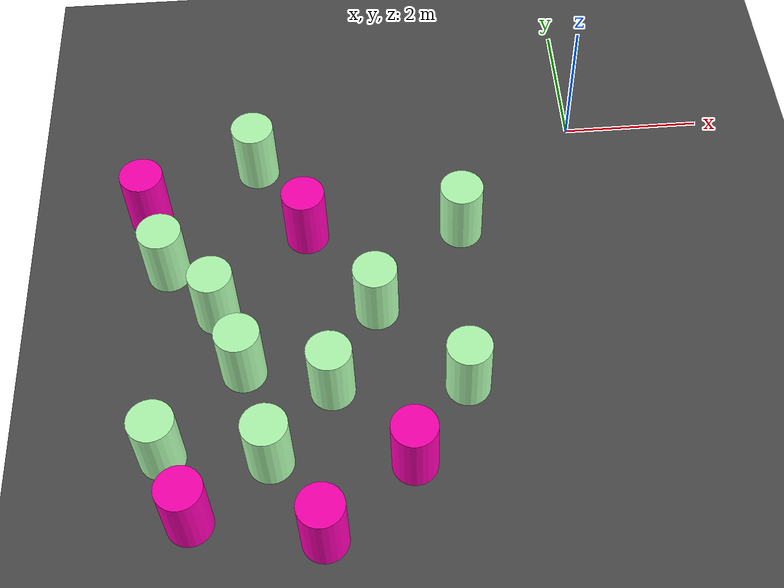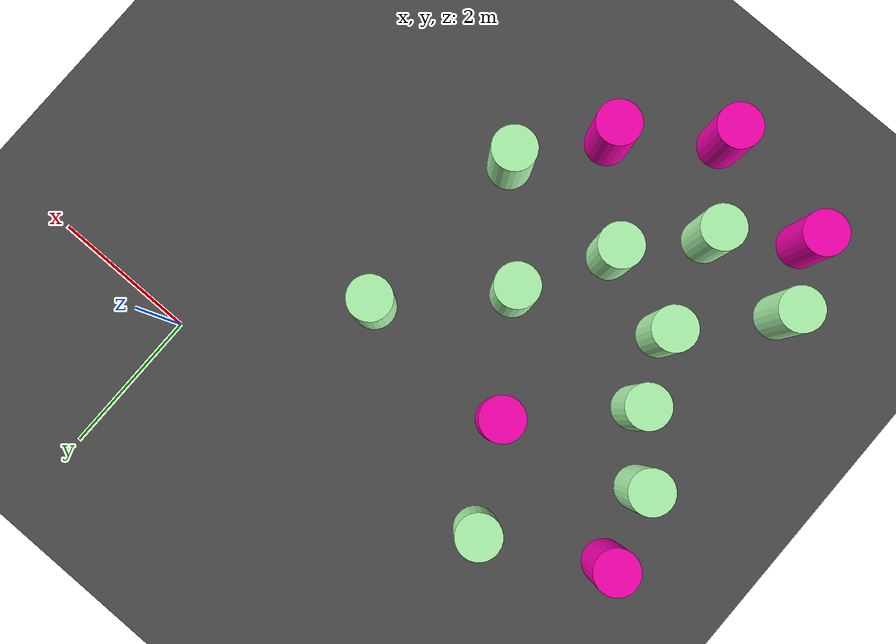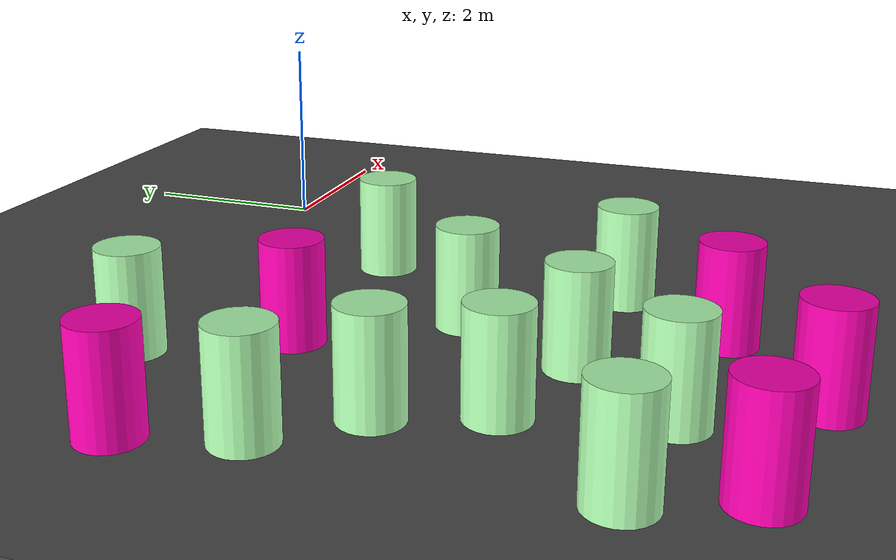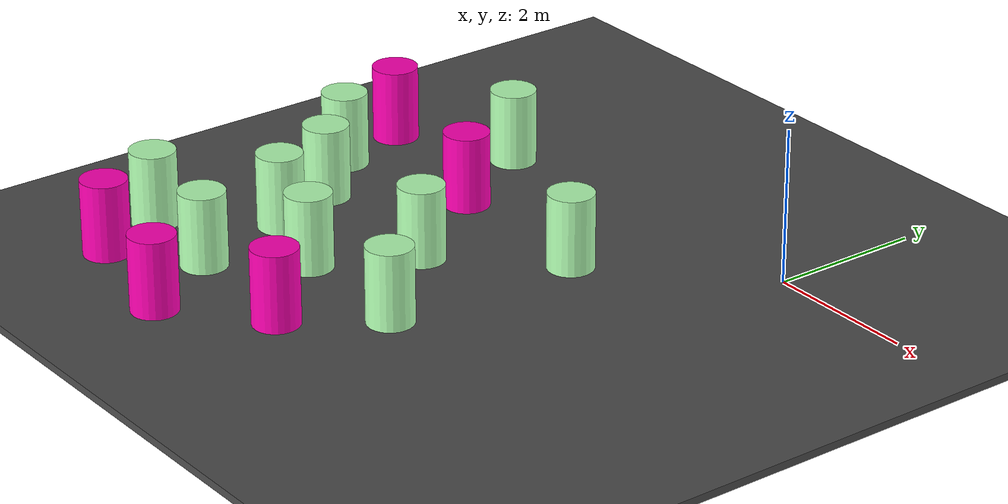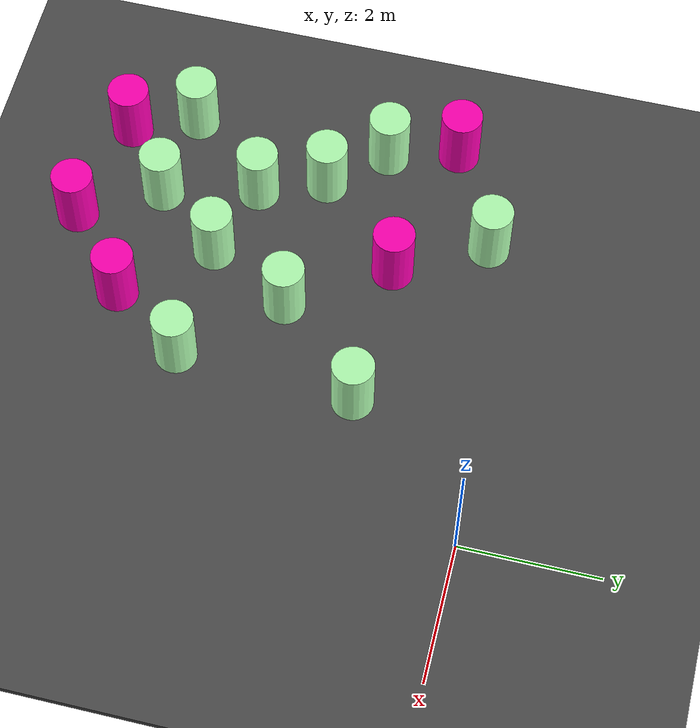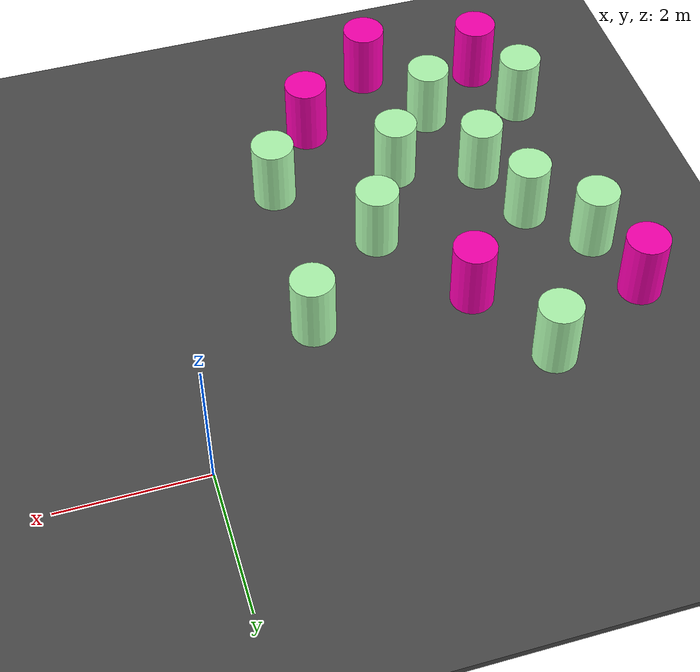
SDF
<sdf version="1.6">
 <world name="default">
  <model name="ground_plane">
   <static>1</static>
   <link name="link">
    <collision name="collision">
     <geometry><plane><normal>0 0 1</normal><size>100 100</size></plane></geometry>
     <surface>
      <contact><collide_bitmask>65535</collide_bitmask></contact>
      <friction><ode><mu>100</mu><mu2>50</mu2></ode></friction>
     </surface>
    </collision>
    <visual name="visual">
     <cast_shadows>0</cast_shadows>
     <geometry><plane><normal>0 0 1</normal><size>100 100</size></plane></geometry>
     <material>
      <script><uri>file://media/materials/scripts/gazebo.material</uri><name>Gazebo/Grey</name></script>
     </material>
    </visual>
   </link>
  </model>
  <model name="asphalt_plane">
   <static>1</static>
   <link name="link">
    <collision name="collision"><geometry><box><size>20 20 0.1</size></box></geometry></collision>
    <visual name="visual">
     <cast_shadows>0</cast_shadows>
     <geometry><box><size>20 20 0.1</size></box></geometry>
     <material>
      <script>
       <uri>model://asphalt_plane/materials/scripts</uri>
       <uri>model://asphalt_plane/materials/textures</uri>
       <name>vrc/asphalt</name>
      </script>
     </material>
    </visual>
   </link>
   <pose>0.075822 -0.052477 0 0 -0 0</pose>
  </model>
  <model name="green_barrel_3">
   <link name="link_1">
    <inertial>
     <mass>20</mass>
     <inertia><ixx>2.91667</ixx><ixy>0</ixy><ixz>0</ixz><iyy>2.91667</iyy><iyz>0</iyz><izz>2.5</izz></inertia>
    </inertial>
    <visual name="visual">
     <geometry><cylinder><radius>0.3</radius><length>1</length></cylinder></geometry>
     <material>
      <lighting>1</lighting>
      <script><uri>file://media/materials/scripts/gazebo.material</uri><name>Gazebo/Grey</name></script>
      <shader type="vertex"><normal_map>__default__</normal_map></shader>
      <ambient>0.3 1 0.3 1</ambient>
      <diffuse>0.7 1 0.7 1</diffuse>
      <specular>0.01 1 0.01 1</specular>
      <emissive>0 1 0 1</emissive>
     </material>
    </visual>
    <collision name="collision">
     <geometry><cylinder><radius>0.5</radius><length>1</length></cylinder></geometry>
     <surface>
      <friction>
       <ode><mu>1</mu><mu2>1</mu2><fdir1>0 0 0</fdir1><slip1>0</slip1><slip2>0</slip2></ode>
       <torsional>
        <coefficient>1</coefficient>
        <patch_radius>0</patch_radius>
        <surface_radius>0</surface_radius>
        <use_patch_radius>1</use_patch_radius>
        <ode><slip>0</slip></ode>
       </torsional>
      </friction>
      <bounce><restitution_coefficient>0</restitution_coefficient><threshold>1e+06</threshold></bounce>
      <contact>
       <collide_without_contact>0</collide_without_contact>
       <collide_without_contact_bitmask>1</collide_without_contact_bitmask>
       <collide_bitmask>1</collide_bitmask>
       <ode>
        <soft_cfm>0</soft_cfm>
        <soft_erp>0.2</soft_erp>
        <kp>1e+13</kp>
        <kd>1</kd>
        <max_vel>0.01</max_vel>
        <min_depth>0</min_depth>
       </ode>
       <bullet>
        <split_impulse>1</split_impulse>
        <split_impulse_penetration_threshold>-0.01</split_impulse_penetration_threshold>
        <soft_cfm>0</soft_cfm>
        <soft_erp>0.2</soft_erp>
        <kp>1e+13</kp>
        <kd>1</kd>
       </bullet>
      </contact>
     </surface>
    </collision>
   </link>
   <static>0</static>
   <pose>-4.53922 -5.35862 0.549989 0 -2e-06 -0.001332</pose>
  </model>
  <model name="green_barrel_13">
   <link name="link_1">
    <inertial>
     <mass>20</mass>
     <inertia><ixx>2.91667</ixx><ixy>0</ixy><ixz>0</ixz><iyy>2.91667</iyy><iyz>0</iyz><izz>2.5</izz></inertia>
    </inertial>
    <visual name="visual">
     <geometry><cylinder><radius>0.3</radius><length>1</length></cylinder></geometry>
     <material>
      <lighting>1</lighting>
      <script><uri>file://media/materials/scripts/gazebo.material</uri><name>Gazebo/Grey</name></script>
      <shader type="vertex"><normal_map>__default__</normal_map></shader>
      <ambient>0.3 1 0.3 1</ambient>
      <diffuse>0.7 1 0.7 1</diffuse>
      <specular>0.01 1 0.01 1</specular>
      <emissive>0 1 0 1</emissive>
     </material>
    </visual>
    <collision name="collision">
     <geometry><cylinder><radius>0.5</radius><length>1</length></cylinder></geometry>
     <surface>
      <friction>
       <ode><mu>1</mu><mu2>1</mu2><fdir1>0 0 0</fdir1><slip1>0</slip1><slip2>0</slip2></ode>
       <torsional>
        <coefficient>1</coefficient>
        <patch_radius>0</patch_radius>
        <surface_radius>0</surface_radius>
        <use_patch_radius>1</use_patch_radius>
        <ode><slip>0</slip></ode>
       </torsional>
      </friction>
      <bounce><restitution_coefficient>0</restitution_coefficient><threshold>1e+06</threshold></bounce>
      <contact>
       <collide_without_contact>0</collide_without_contact>
       <collide_without_contact_bitmask>1</collide_without_contact_bitmask>
       <collide_bitmask>1</collide_bitmask>
       <ode>
        <soft_cfm>0</soft_cfm>
        <soft_erp>0.2</soft_erp>
        <kp>1e+13</kp>
        <kd>1</kd>
        <max_vel>0.01</max_vel>
        <min_depth>0</min_depth>
       </ode>
       <bullet>
        <split_impulse>1</split_impulse>
        <split_impulse_penetration_threshold>-0.01</split_impulse_penetration_threshold>
        <soft_cfm>0</soft_cfm>
        <soft_erp>0.2</soft_erp>
        <kp>1e+13</kp>
        <kd>1</kd>
       </bullet>
      </contact>
     </surface>
    </collision>
   </link>
   <static>0</static>
   <pose>-5.91347 -5.19766 0.550003 6e-06 2e-06 0.036432</pose>
  </model>
  <model name="red_barrel_12">
   <link name="link_1">
    <inertial>
     <mass>20</mass>
     <inertia><ixx>2.91667</ixx><ixy>0</ixy><ixz>0</ixz><iyy>2.91667</iyy><iyz>0</iyz><izz>2.5</izz></inertia>
    </inertial>
    <pose>0.092935 0.418257 0.5 0 -0 0</pose>
    <visual name="visual">
     <geometry><cylinder><radius>0.3</radius><length>1</length></cylinder></geometry>
     <material>
      <lighting>1</lighting>
      <script><uri>file://media/materials/scripts/gazebo.material</uri><name>Gazebo/Grey</name></script>
      <shader type="vertex"><normal_map>__default__</normal_map></shader>
      <ambient>0.9 0 0.3 1</ambient>
      <diffuse>1 0 0.7 1</diffuse>
      <specular>1 0 0.01 1</specular>
      <emissive>1 0 0 1</emissive>
     </material>
    </visual>
    <collision name="collision">
     <geometry><cylinder><radius>0.5</radius><length>1</length></cylinder></geometry>
     <surface>
      <friction>
       <ode><mu>1</mu><mu2>1</mu2><fdir1>0 0 0</fdir1><slip1>0</slip1><slip2>0</slip2></ode>
       <torsional>
        <coefficient>1</coefficient>
        <patch_radius>0</patch_radius>
        <surface_radius>0</surface_radius>
        <use_patch_radius>1</use_patch_radius>
        <ode><slip>0</slip></ode>
       </torsional>
      </friction>
      <bounce><restitution_coefficient>0</restitution_coefficient><threshold>1e+06</threshold></bounce>
      <contact>
       <collide_without_contact>0</collide_without_contact>
       <collide_without_contact_bitmask>1</collide_without_contact_bitmask>
       <collide_bitmask>1</collide_bitmask>
       <ode>
        <soft_cfm>0</soft_cfm>
        <soft_erp>0.2</soft_erp>
        <kp>1e+13</kp>
        <kd>1</kd>
        <max_vel>0.01</max_vel>
        <min_depth>0</min_depth>
       </ode>
       <bullet>
        <split_impulse>1</split_impulse>
        <split_impulse_penetration_threshold>-0.01</split_impulse_penetration_threshold>
        <soft_cfm>0</soft_cfm>
        <soft_erp>0.2</soft_erp>
        <kp>1e+13</kp>
        <kd>1</kd>
       </bullet>
      </contact>
     </surface>
    </collision>
   </link>
   <static>0</static>
   <pose>-5.61693 -6.54812 0.049994 5e-06 9e-06 0.037162</pose>
  </model>
  <model name="green_barrel_0">
   <link name="link_1">
    <inertial>
     <mass>20</mass>
     <inertia><ixx>2.91667</ixx><ixy>0</ixy><ixz>0</ixz><iyy>2.91667</iyy><iyz>0</iyz><izz>2.5</izz></inertia>
    </inertial>
    <visual name="visual">
     <geometry><cylinder><radius>0.3</radius><length>1</length></cylinder></geometry>
     <material>
      <lighting>1</lighting>
      <script><uri>file://media/materials/scripts/gazebo.material</uri><name>Gazebo/Grey</name></script>
      <shader type="vertex"><normal_map>__default__</normal_map></shader>
      <ambient>0.3 1 0.3 1</ambient>
      <diffuse>0.7 1 0.7 1</diffuse>
      <specular>0.01 1 0.01 1</specular>
      <emissive>0 1 0 1</emissive>
     </material>
    </visual>
    <collision name="collision">
     <geometry><cylinder><radius>0.3</radius><length>1</length></cylinder></geometry>
     <surface>
      <friction>
       <ode><mu>1</mu><mu2>1</mu2><fdir1>0 0 0</fdir1><slip1>0</slip1><slip2>0</slip2></ode>
       <torsional>
        <coefficient>1</coefficient>
        <patch_radius>0</patch_radius>
        <surface_radius>0</surface_radius>
        <use_patch_radius>1</use_patch_radius>
        <ode><slip>0</slip></ode>
       </torsional>
      </friction>
      <bounce><restitution_coefficient>0</restitution_coefficient><threshold>1e+06</threshold></bounce>
      <contact>
       <collide_without_contact>0</collide_without_contact>
       <collide_without_contact_bitmask>1</collide_without_contact_bitmask>
       <collide_bitmask>1</collide_bitmask>
       <ode>
        <soft_cfm>0</soft_cfm>
        <soft_erp>0.2</soft_erp>
        <kp>1e+13</kp>
        <kd>1</kd>
        <max_vel>0.01</max_vel>
        <min_depth>0</min_depth>
       </ode>
       <bullet>
        <split_impulse>1</split_impulse>
        <split_impulse_penetration_threshold>-0.01</split_impulse_penetration_threshold>
        <soft_cfm>0</soft_cfm>
        <soft_erp>0.2</soft_erp>
        <kp>1e+13</kp>
        <kd>1</kd>
       </bullet>
      </contact>
     </surface>
    </collision>
   </link>
   <static>0</static>
   <pose>-1.80158 -1.8497 0.549999 -2e-06 -1e-06 0.014586</pose>
  </model>
  <model name="green_barrel_1">
   <link name="link_1">
    <inertial>
     <mass>20</mass>
     <inertia><ixx>2.91667</ixx><ixy>0</ixy><ixz>0</ixz><iyy>2.91667</iyy><iyz>0</iyz><izz>2.5</izz></inertia>
    </inertial>
    <visual name="visual">
     <geometry><cylinder><radius>0.3</radius><length>1</length></cylinder></geometry>
     <material>
      <lighting>1</lighting>
      <script><uri>file://media/materials/scripts/gazebo.material</uri><name>Gazebo/Grey</name></script>
      <shader type="vertex"><normal_map>__default__</normal_map></shader>
      <ambient>0.3 1 0.3 1</ambient>
      <diffuse>0.7 1 0.7 1</diffuse>
      <specular>0.01 1 0.01 1</specular>
      <emissive>0 1 0 1</emissive>
     </material>
    </visual>
    <collision name="collision">
     <geometry><cylinder><radius>0.3</radius><length>1</length></cylinder></geometry>
     <surface>
      <friction>
       <ode><mu>1</mu><mu2>1</mu2><fdir1>0 0 0</fdir1><slip1>0</slip1><slip2>0</slip2></ode>
       <torsional>
        <coefficient>1</coefficient>
        <patch_radius>0</patch_radius>
        <surface_radius>0</surface_radius>
        <use_patch_radius>1</use_patch_radius>
        <ode><slip>0</slip></ode>
       </torsional>
      </friction>
      <bounce><restitution_coefficient>0</restitution_coefficient><threshold>1e+06</threshold></bounce>
      <contact>
       <collide_without_contact>0</collide_without_contact>
       <collide_without_contact_bitmask>1</collide_without_contact_bitmask>
       <collide_bitmask>1</collide_bitmask>
       <ode>
        <soft_cfm>0</soft_cfm>
        <soft_erp>0.2</soft_erp>
        <kp>1e+13</kp>
        <kd>1</kd>
        <max_vel>0.01</max_vel>
        <min_depth>0</min_depth>
       </ode>
       <bullet>
        <split_impulse>1</split_impulse>
        <split_impulse_penetration_threshold>-0.01</split_impulse_penetration_threshold>
        <soft_cfm>0</soft_cfm>
        <soft_erp>0.2</soft_erp>
        <kp>1e+13</kp>
        <kd>1</kd>
       </bullet>
      </contact>
     </surface>
    </collision>
   </link>
   <static>0</static>
   <pose>-3.07758 -3.15159 0.549992 -3e-06 -1e-06 0.01477</pose>
  </model>
  <model name="green_barrel">
   <link name="link_1">
    <inertial>
     <mass>20</mass>
     <inertia><ixx>2.91667</ixx><ixy>0</ixy><ixz>0</ixz><iyy>2.91667</iyy><iyz>0</iyz><izz>2.5</izz></inertia>
    </inertial>
    <visual name="visual">
     <geometry><cylinder><radius>0.3</radius><length>1</length></cylinder></geometry>
     <material>
      <lighting>1</lighting>
      <script><uri>file://media/materials/scripts/gazebo.material</uri><name>Gazebo/Grey</name></script>
      <shader type="vertex"><normal_map>__default__</normal_map></shader>
      <ambient>0.3 1 0.3 1</ambient>
      <diffuse>0.7 1 0.7 1</diffuse>
      <specular>0.01 1 0.01 1</specular>
      <emissive>0 1 0 1</emissive>
     </material>
    </visual>
    <collision name="collision">
     <geometry><cylinder><radius>0.3</radius><length>1</length></cylinder></geometry>
     <surface>
      <friction>
       <ode><mu>1</mu><mu2>1</mu2><fdir1>0 0 0</fdir1><slip1>0</slip1><slip2>0</slip2></ode>
       <torsional>
        <coefficient>1</coefficient>
        <patch_radius>0</patch_radius>
        <surface_radius>0</surface_radius>
        <use_patch_radius>1</use_patch_radius>
        <ode><slip>0</slip></ode>
       </torsional>
      </friction>
      <bounce><restitution_coefficient>0</restitution_coefficient><threshold>1e+06</threshold></bounce>
      <contact>
       <collide_without_contact>0</collide_without_contact>
       <collide_without_contact_bitmask>1</collide_without_contact_bitmask>
       <collide_bitmask>1</collide_bitmask>
       <ode>
        <soft_cfm>0</soft_cfm>
        <soft_erp>0.2</soft_erp>
        <kp>1e+13</kp>
        <kd>1</kd>
        <max_vel>0.01</max_vel>
        <min_depth>0</min_depth>
       </ode>
       <bullet>
        <split_impulse>1</split_impulse>
        <split_impulse_penetration_threshold>-0.01</split_impulse_penetration_threshold>
        <soft_cfm>0</soft_cfm>
        <soft_erp>0.2</soft_erp>
        <kp>1e+13</kp>
        <kd>1</kd>
       </bullet>
      </contact>
     </surface>
    </collision>
   </link>
   <static>0</static>
   <pose>-1.94084 -4.43406 0.549999 4e-06 1e-06 0.014704</pose>
  </model>
  <model name="red_barrel_0">
   <link name="link_1">
    <inertial>
     <mass>20</mass>
     <inertia><ixx>2.91667</ixx><ixy>0</ixy><ixz>0</ixz><iyy>2.91667</iyy><iyz>0</iyz><izz>2.5</izz></inertia>
    </inertial>
    <pose>0.092935 0.418257 0.5 0 -0 0</pose>
    <visual name="visual">
     <geometry><cylinder><radius>0.3</radius><length>1</length></cylinder></geometry>
     <material>
      <lighting>1</lighting>
      <script><uri>file://media/materials/scripts/gazebo.material</uri><name>Gazebo/Grey</name></script>
      <shader type="vertex"><normal_map>__default__</normal_map></shader>
      <ambient>0.9 0 0.3 1</ambient>
      <diffuse>1 0 0.7 1</diffuse>
      <specular>1 0 0.01 1</specular>
      <emissive>1 0 0 1</emissive>
     </material>
    </visual>
    <collision name="collision">
     <geometry><cylinder><radius>0.3</radius><length>1</length></cylinder></geometry>
     <surface>
      <friction>
       <ode><mu>1</mu><mu2>1</mu2><fdir1>0 0 0</fdir1><slip1>0</slip1><slip2>0</slip2></ode>
       <torsional>
        <coefficient>1</coefficient>
        <patch_radius>0</patch_radius>
        <surface_radius>0</surface_radius>
        <use_patch_radius>1</use_patch_radius>
        <ode><slip>0</slip></ode>
       </torsional>
      </friction>
      <bounce><restitution_coefficient>0</restitution_coefficient><threshold>1e+06</threshold></bounce>
      <contact>
       <collide_without_contact>0</collide_without_contact>
       <collide_without_contact_bitmask>1</collide_without_contact_bitmask>
       <collide_bitmask>1</collide_bitmask>
       <ode>
        <soft_cfm>0</soft_cfm>
        <soft_erp>0.2</soft_erp>
        <kp>1e+13</kp>
        <kd>1</kd>
        <max_vel>0.01</max_vel>
        <min_depth>0</min_depth>
       </ode>
       <bullet>
        <split_impulse>1</split_impulse>
        <split_impulse_penetration_threshold>-0.01</split_impulse_penetration_threshold>
        <soft_cfm>0</soft_cfm>
        <soft_erp>0.2</soft_erp>
        <kp>1e+13</kp>
        <kd>1</kd>
       </bullet>
      </contact>
     </surface>
    </collision>
   </link>
   <static>0</static>
   <pose>-2.81221 -5.94314 0.05 -2e-06 -1e-06 -0.000942</pose>
  </model>
  <model name="red_barrel_9">
   <link name="link_1">
    <inertial>
     <mass>20</mass>
     <inertia><ixx>2.91667</ixx><ixy>0</ixy><ixz>0</ixz><iyy>2.91667</iyy><iyz>0</iyz><izz>2.5</izz></inertia>
    </inertial>
    <pose>0.092935 0.418257 0.5 0 -0 0</pose>
    <visual name="visual">
     <geometry><cylinder><radius>0.3</radius><length>1</length></cylinder></geometry>
     <material>
      <lighting>1</lighting>
      <script><uri>file://media/materials/scripts/gazebo.material</uri><name>Gazebo/Grey</name></script>
      <shader type="vertex"><normal_map>__default__</normal_map></shader>
      <ambient>0.9 0 0.3 1</ambient>
      <diffuse>1 0 0.7 1</diffuse>
      <specular>1 0 0.01 1</specular>
      <emissive>1 0 0 1</emissive>
     </material>
    </visual>
    <collision name="collision">
     <geometry><cylinder><radius>0.3</radius><length>1</length></cylinder></geometry>
     <surface>
      <friction>
       <ode><mu>1</mu><mu2>1</mu2><fdir1>0 0 0</fdir1><slip1>0</slip1><slip2>0</slip2></ode>
       <torsional>
        <coefficient>1</coefficient>
        <patch_radius>0</patch_radius>
        <surface_radius>0</surface_radius>
        <use_patch_radius>1</use_patch_radius>
        <ode><slip>0</slip></ode>
       </torsional>
      </friction>
      <bounce><restitution_coefficient>0</restitution_coefficient><threshold>1e+06</threshold></bounce>
      <contact>
       <collide_without_contact>0</collide_without_contact>
       <collide_without_contact_bitmask>1</collide_without_contact_bitmask>
       <collide_bitmask>1</collide_bitmask>
       <ode>
        <soft_cfm>0</soft_cfm>
        <soft_erp>0.2</soft_erp>
        <kp>1e+13</kp>
        <kd>1</kd>
        <max_vel>0.01</max_vel>
        <min_depth>0</min_depth>
       </ode>
       <bullet>
        <split_impulse>1</split_impulse>
        <split_impulse_penetration_threshold>-0.01</split_impulse_penetration_threshold>
        <soft_cfm>0</soft_cfm>
        <soft_erp>0.2</soft_erp>
        <kp>1e+13</kp>
        <kd>1</kd>
       </bullet>
      </contact>
     </surface>
    </collision>
   </link>
   <static>0</static>
   <pose>-3.97689 -6.8932 0.050001 1e-06 4e-06 0.000808</pose>
  </model>
  <model name="green_barrel_2">
   <link name="link_1">
    <inertial>
     <mass>20</mass>
     <inertia><ixx>2.91667</ixx><ixy>0</ixy><ixz>0</ixz><iyy>2.91667</iyy><iyz>0</iyz><izz>2.5</izz></inertia>
    </inertial>
    <visual name="visual">
     <geometry><cylinder><radius>0.3</radius><length>1</length></cylinder></geometry>
     <material>
      <lighting>1</lighting>
      <script><uri>file://media/materials/scripts/gazebo.material</uri><name>Gazebo/Grey</name></script>
      <shader type="vertex"><normal_map>__default__</normal_map></shader>
      <ambient>0.3 1 0.3 1</ambient>
      <diffuse>0.7 1 0.7 1</diffuse>
      <specular>0.01 1 0.01 1</specular>
      <emissive>0 1 0 1</emissive>
     </material>
    </visual>
    <collision name="collision">
     <geometry><cylinder><radius>0.3</radius><length>1</length></cylinder></geometry>
     <surface>
      <friction>
       <ode><mu>1</mu><mu2>1</mu2><fdir1>0 0 0</fdir1><slip1>0</slip1><slip2>0</slip2></ode>
       <torsional>
        <coefficient>1</coefficient>
        <patch_radius>0</patch_radius>
        <surface_radius>0</surface_radius>
        <use_patch_radius>1</use_patch_radius>
        <ode><slip>0</slip></ode>
       </torsional>
      </friction>
      <bounce><restitution_coefficient>0</restitution_coefficient><threshold>1e+06</threshold></bounce>
      <contact>
       <collide_without_contact>0</collide_without_contact>
       <collide_without_contact_bitmask>1</collide_without_contact_bitmask>
       <collide_bitmask>1</collide_bitmask>
       <ode>
        <soft_cfm>0</soft_cfm>
        <soft_erp>0.2</soft_erp>
        <kp>1e+13</kp>
        <kd>1</kd>
        <max_vel>0.01</max_vel>
        <min_depth>0</min_depth>
       </ode>
       <bullet>
        <split_impulse>1</split_impulse>
        <split_impulse_penetration_threshold>-0.01</split_impulse_penetration_threshold>
        <soft_cfm>0</soft_cfm>
        <soft_erp>0.2</soft_erp>
        <kp>1e+13</kp>
        <kd>1</kd>
       </bullet>
      </contact>
     </surface>
    </collision>
   </link>
   <static>0</static>
   <pose>-3.72405 -4.36537 0.550001 3e-06 1e-06 0.015187</pose>
  </model>
  <model name="green_barrel_4">
   <link name="link_1">
    <inertial>
     <mass>20</mass>
     <inertia><ixx>2.91667</ixx><ixy>0</ixy><ixz>0</ixz><iyy>2.91667</iyy><iyz>0</iyz><izz>2.5</izz></inertia>
    </inertial>
    <visual name="visual">
     <geometry><cylinder><radius>0.3</radius><length>1</length></cylinder></geometry>
     <material>
      <lighting>1</lighting>
      <script><uri>file://media/materials/scripts/gazebo.material</uri><name>Gazebo/Grey</name></script>
      <shader type="vertex"><normal_map>__default__</normal_map></shader>
      <ambient>0.3 1 0.3 1</ambient>
      <diffuse>0.7 1 0.7 1</diffuse>
      <specular>0.01 1 0.01 1</specular>
      <emissive>0 1 0 1</emissive>
     </material>
    </visual>
    <collision name="collision">
     <geometry><cylinder><radius>0.3</radius><length>1</length></cylinder></geometry>
     <surface>
      <friction>
       <ode><mu>1</mu><mu2>1</mu2><fdir1>0 0 0</fdir1><slip1>0</slip1><slip2>0</slip2></ode>
       <torsional>
        <coefficient>1</coefficient>
        <patch_radius>0</patch_radius>
        <surface_radius>0</surface_radius>
        <use_patch_radius>1</use_patch_radius>
        <ode><slip>0</slip></ode>
       </torsional>
      </friction>
      <bounce><restitution_coefficient>0</restitution_coefficient><threshold>1e+06</threshold></bounce>
      <contact>
       <collide_without_contact>0</collide_without_contact>
       <collide_without_contact_bitmask>1</collide_without_contact_bitmask>
       <collide_bitmask>1</collide_bitmask>
       <ode>
        <soft_cfm>0</soft_cfm>
        <soft_erp>0.2</soft_erp>
        <kp>1e+13</kp>
        <kd>1</kd>
        <max_vel>0.01</max_vel>
        <min_depth>0</min_depth>
       </ode>
       <bullet>
        <split_impulse>1</split_impulse>
        <split_impulse_penetration_threshold>-0.01</split_impulse_penetration_threshold>
        <soft_cfm>0</soft_cfm>
        <soft_erp>0.2</soft_erp>
        <kp>1e+13</kp>
        <kd>1</kd>
       </bullet>
      </contact>
     </surface>
    </collision>
   </link>
   <static>0</static>
   <pose>-4.88597 -4.00148 0.549992 3e-06 -1e-06 -0.010388</pose>
  </model>
  <model name="green_barrel_14">
   <link name="link_1">
    <inertial>
     <mass>20</mass>
     <inertia><ixx>2.91667</ixx><ixy>0</ixy><ixz>0</ixz><iyy>2.91667</iyy><iyz>0</iyz><izz>2.5</izz></inertia>
    </inertial>
    <visual name="visual">
     <geometry><cylinder><radius>0.3</radius><length>1</length></cylinder></geometry>
     <material>
      <lighting>1</lighting>
      <script><uri>file://media/materials/scripts/gazebo.material</uri><name>Gazebo/Grey</name></script>
      <shader type="vertex"><normal_map>__default__</normal_map></shader>
      <ambient>0.3 1 0.3 1</ambient>
      <diffuse>0.7 1 0.7 1</diffuse>
      <specular>0.01 1 0.01 1</specular>
      <emissive>0 1 0 1</emissive>
     </material>
    </visual>
    <collision name="collision">
     <geometry><cylinder><radius>0.3</radius><length>1</length></cylinder></geometry>
     <surface>
      <friction>
       <ode><mu>1</mu><mu2>1</mu2><fdir1>0 0 0</fdir1><slip1>0</slip1><slip2>0</slip2></ode>
       <torsional>
        <coefficient>1</coefficient>
        <patch_radius>0</patch_radius>
        <surface_radius>0</surface_radius>
        <use_patch_radius>1</use_patch_radius>
        <ode><slip>0</slip></ode>
       </torsional>
      </friction>
      <bounce><restitution_coefficient>0</restitution_coefficient><threshold>1e+06</threshold></bounce>
      <contact>
       <collide_without_contact>0</collide_without_contact>
       <collide_without_contact_bitmask>1</collide_without_contact_bitmask>
       <collide_bitmask>1</collide_bitmask>
       <ode>
        <soft_cfm>0</soft_cfm>
        <soft_erp>0.2</soft_erp>
        <kp>1e+13</kp>
        <kd>1</kd>
        <max_vel>0.01</max_vel>
        <min_depth>0</min_depth>
       </ode>
       <bullet>
        <split_impulse>1</split_impulse>
        <split_impulse_penetration_threshold>-0.01</split_impulse_penetration_threshold>
        <soft_cfm>0</soft_cfm>
        <soft_erp>0.2</soft_erp>
        <kp>1e+13</kp>
        <kd>1</kd>
       </bullet>
      </contact>
     </surface>
    </collision>
   </link>
   <static>0</static>
   <pose>-5.24967 -3.0573 0.54999 2e-06 0 -0.010492</pose>
  </model>
  <model name="green_barrel_15">
   <link name="link_1">
    <inertial>
     <mass>20</mass>
     <inertia><ixx>2.91667</ixx><ixy>0</ixy><ixz>0</ixz><iyy>2.91667</iyy><iyz>0</iyz><izz>2.5</izz></inertia>
    </inertial>
    <visual name="visual">
     <geometry><cylinder><radius>0.3</radius><length>1</length></cylinder></geometry>
     <material>
      <lighting>1</lighting>
      <script><uri>file://media/materials/scripts/gazebo.material</uri><name>Gazebo/Grey</name></script>
      <shader type="vertex"><normal_map>__default__</normal_map></shader>
      <ambient>0.3 1 0.3 1</ambient>
      <diffuse>0.7 1 0.7 1</diffuse>
      <specular>0.01 1 0.01 1</specular>
      <emissive>0 1 0 1</emissive>
     </material>
    </visual>
    <collision name="collision">
     <geometry><cylinder><radius>0.3</radius><length>1</length></cylinder></geometry>
     <surface>
      <friction>
       <ode><mu>1</mu><mu2>1</mu2><fdir1>0 0 0</fdir1><slip1>0</slip1><slip2>0</slip2></ode>
       <torsional>
        <coefficient>1</coefficient>
        <patch_radius>0</patch_radius>
        <surface_radius>0</surface_radius>
        <use_patch_radius>1</use_patch_radius>
        <ode><slip>0</slip></ode>
       </torsional>
      </friction>
      <bounce><restitution_coefficient>0</restitution_coefficient><threshold>1e+06</threshold></bounce>
      <contact>
       <collide_without_contact>0</collide_without_contact>
       <collide_without_contact_bitmask>1</collide_without_contact_bitmask>
       <collide_bitmask>1</collide_bitmask>
       <ode>
        <soft_cfm>0</soft_cfm>
        <soft_erp>0.2</soft_erp>
        <kp>1e+13</kp>
        <kd>1</kd>
        <max_vel>0.01</max_vel>
        <min_depth>0</min_depth>
       </ode>
       <bullet>
        <split_impulse>1</split_impulse>
        <split_impulse_penetration_threshold>-0.01</split_impulse_penetration_threshold>
        <soft_cfm>0</soft_cfm>
        <soft_erp>0.2</soft_erp>
        <kp>1e+13</kp>
        <kd>1</kd>
       </bullet>
      </contact>
     </surface>
    </collision>
   </link>
   <static>0</static>
   <pose>-5.94717 -2.28676 0.549999 3e-06 1e-06 -0.010656</pose>
  </model>
  <model name="red_barrel">
   <link name="link_1">
    <inertial>
     <mass>20</mass>
     <inertia><ixx>2.91667</ixx><ixy>0</ixy><ixz>0</ixz><iyy>2.91667</iyy><iyz>0</iyz><izz>2.5</izz></inertia>
    </inertial>
    <pose>0.092935 0.418257 0.5 0 -0 0</pose>
    <visual name="visual">
     <geometry><cylinder><radius>0.3</radius><length>1</length></cylinder></geometry>
     <material>
      <lighting>1</lighting>
      <script><uri>file://media/materials/scripts/gazebo.material</uri><name>Gazebo/Grey</name></script>
      <shader type="vertex"><normal_map>__default__</normal_map></shader>
      <ambient>0.9 0 0.3 1</ambient>
      <diffuse>1 0 0.7 1</diffuse>
      <specular>1 0 0.01 1</specular>
      <emissive>1 0 0 1</emissive>
     </material>
    </visual>
    <collision name="collision">
     <geometry><cylinder><radius>0.3</radius><length>1</length></cylinder></geometry>
     <surface>
      <friction>
       <ode><mu>1</mu><mu2>1</mu2><fdir1>0 0 0</fdir1><slip1>0</slip1><slip2>0</slip2></ode>
       <torsional>
        <coefficient>1</coefficient>
        <patch_radius>0</patch_radius>
        <surface_radius>0</surface_radius>
        <use_patch_radius>1</use_patch_radius>
        <ode><slip>0</slip></ode>
       </torsional>
      </friction>
      <bounce><restitution_coefficient>0</restitution_coefficient><threshold>1e+06</threshold></bounce>
      <contact>
       <collide_without_contact>0</collide_without_contact>
       <collide_without_contact_bitmask>1</collide_without_contact_bitmask>
       <collide_bitmask>1</collide_bitmask>
       <ode>
        <soft_cfm>0</soft_cfm>
        <soft_erp>0.2</soft_erp>
        <kp>1e+13</kp>
        <kd>1</kd>
        <max_vel>0.01</max_vel>
        <min_depth>0</min_depth>
       </ode>
       <bullet>
        <split_impulse>1</split_impulse>
        <split_impulse_penetration_threshold>-0.01</split_impulse_penetration_threshold>
        <soft_cfm>0</soft_cfm>
        <soft_erp>0.2</soft_erp>
        <kp>1e+13</kp>
        <kd>1</kd>
       </bullet>
      </contact>
     </surface>
    </collision>
   </link>
   <static>0</static>
   <pose>-6.33303 -1.69591 0.049997 4e-06 -0 0.000529</pose>
  </model>
  <model name="red_barrel_1">
   <link name="link_1">
    <inertial>
     <mass>20</mass>
     <inertia><ixx>2.91667</ixx><ixy>0</ixy><ixz>0</ixz><iyy>2.91667</iyy><iyz>0</iyz><izz>2.5</izz></inertia>
    </inertial>
    <pose>0.092935 0.418257 0.5 0 -0 0</pose>
    <visual name="visual">
     <geometry><cylinder><radius>0.3</radius><length>1</length></cylinder></geometry>
     <material>
      <lighting>1</lighting>
      <script><uri>file://media/materials/scripts/gazebo.material</uri><name>Gazebo/Grey</name></script>
      <shader type="vertex"><normal_map>__default__</normal_map></shader>
      <ambient>0.9 0 0.3 1</ambient>
      <diffuse>1 0 0.7 1</diffuse>
      <specular>1 0 0.01 1</specular>
      <emissive>1 0 0 1</emissive>
     </material>
    </visual>
    <collision name="collision">
     <geometry><cylinder><radius>0.3</radius><length>1</length></cylinder></geometry>
     <surface>
      <friction>
       <ode><mu>1</mu><mu2>1</mu2><fdir1>0 0 0</fdir1><slip1>0</slip1><slip2>0</slip2></ode>
       <torsional>
        <coefficient>1</coefficient>
        <patch_radius>0</patch_radius>
        <surface_radius>0</surface_radius>
        <use_patch_radius>1</use_patch_radius>
        <ode><slip>0</slip></ode>
       </torsional>
      </friction>
      <bounce><restitution_coefficient>0</restitution_coefficient><threshold>1e+06</threshold></bounce>
      <contact>
       <collide_without_contact>0</collide_without_contact>
       <collide_without_contact_bitmask>1</collide_without_contact_bitmask>
       <collide_bitmask>1</collide_bitmask>
       <ode>
        <soft_cfm>0</soft_cfm>
        <soft_erp>0.2</soft_erp>
        <kp>1e+13</kp>
        <kd>1</kd>
        <max_vel>0.01</max_vel>
        <min_depth>0</min_depth>
       </ode>
       <bullet>
        <split_impulse>1</split_impulse>
        <split_impulse_penetration_threshold>-0.01</split_impulse_penetration_threshold>
        <soft_cfm>0</soft_cfm>
        <soft_erp>0.2</soft_erp>
        <kp>1e+13</kp>
        <kd>1</kd>
       </bullet>
      </contact>
     </surface>
    </collision>
   </link>
   <static>0</static>
   <pose>-4.09385 -2.20018 0.050001 -1e-06 -0 -0.000566</pose>
  </model>
  <model name="green_barrel_5">
   <link name="link_1">
    <inertial>
     <mass>20</mass>
     <inertia><ixx>2.91667</ixx><ixy>0</ixy><ixz>0</ixz><iyy>2.91667</iyy><iyz>0</iyz><izz>2.5</izz></inertia>
    </inertial>
    <visual name="visual">
     <geometry><cylinder><radius>0.3</radius><length>1</length></cylinder></geometry>
     <material>
      <lighting>1</lighting>
      <script><uri>file://media/materials/scripts/gazebo.material</uri><name>Gazebo/Grey</name></script>
      <shader type="vertex"><normal_map>__default__</normal_map></shader>
      <ambient>0.3 1 0.3 1</ambient>
      <diffuse>0.7 1 0.7 1</diffuse>
      <specular>0.01 1 0.01 1</specular>
      <emissive>0 1 0 1</emissive>
     </material>
    </visual>
    <collision name="collision">
     <geometry><cylinder><radius>0.3</radius><length>1</length></cylinder></geometry>
     <surface>
      <friction>
       <ode><mu>1</mu><mu2>1</mu2><fdir1>0 0 0</fdir1><slip1>0</slip1><slip2>0</slip2></ode>
       <torsional>
        <coefficient>1</coefficient>
        <patch_radius>0</patch_radius>
        <surface_radius>0</surface_radius>
        <use_patch_radius>1</use_patch_radius>
        <ode><slip>0</slip></ode>
       </torsional>
      </friction>
      <bounce><restitution_coefficient>0</restitution_coefficient><threshold>1e+06</threshold></bounce>
      <contact>
       <collide_without_contact>0</collide_without_contact>
       <collide_without_contact_bitmask>1</collide_without_contact_bitmask>
       <collide_bitmask>1</collide_bitmask>
       <ode>
        <soft_cfm>0</soft_cfm>
        <soft_erp>0.2</soft_erp>
        <kp>1e+13</kp>
        <kd>1</kd>
        <max_vel>0.01</max_vel>
        <min_depth>0</min_depth>
       </ode>
       <bullet>
        <split_impulse>1</split_impulse>
        <split_impulse_penetration_threshold>-0.01</split_impulse_penetration_threshold>
        <soft_cfm>0</soft_cfm>
        <soft_erp>0.2</soft_erp>
        <kp>1e+13</kp>
        <kd>1</kd>
       </bullet>
      </contact>
     </surface>
    </collision>
   </link>
   <static>0</static>
   <pose>-4.70207 -0.512981 0.55 -1e-06 -0 0.015289</pose>
  </model>
 </world>
</sdf>
